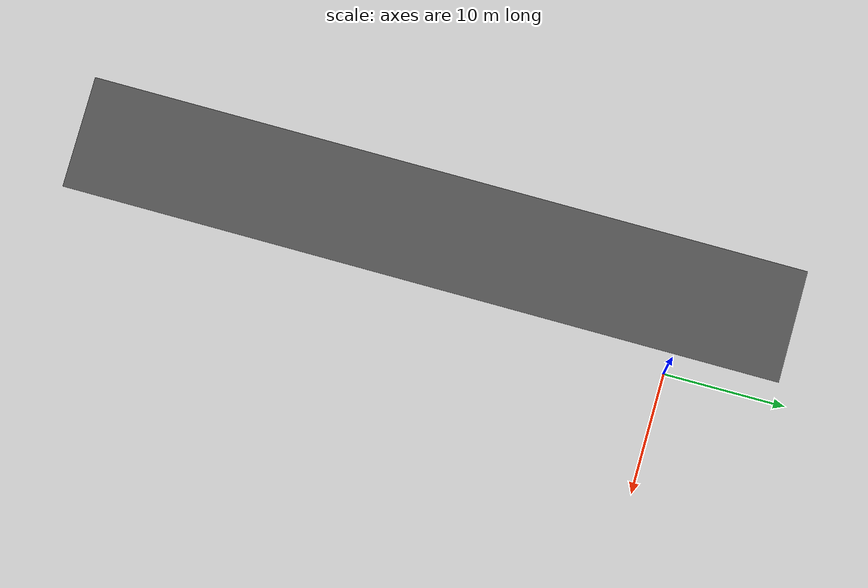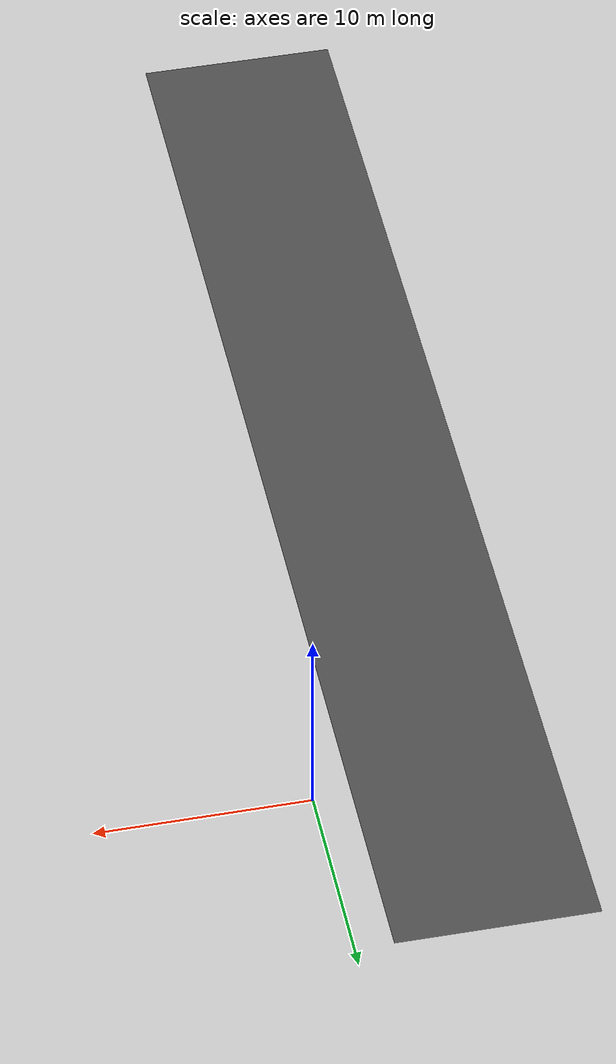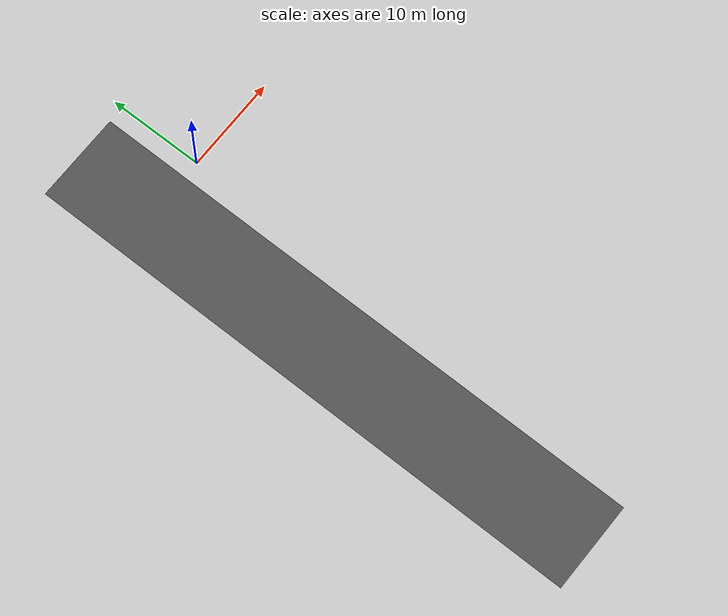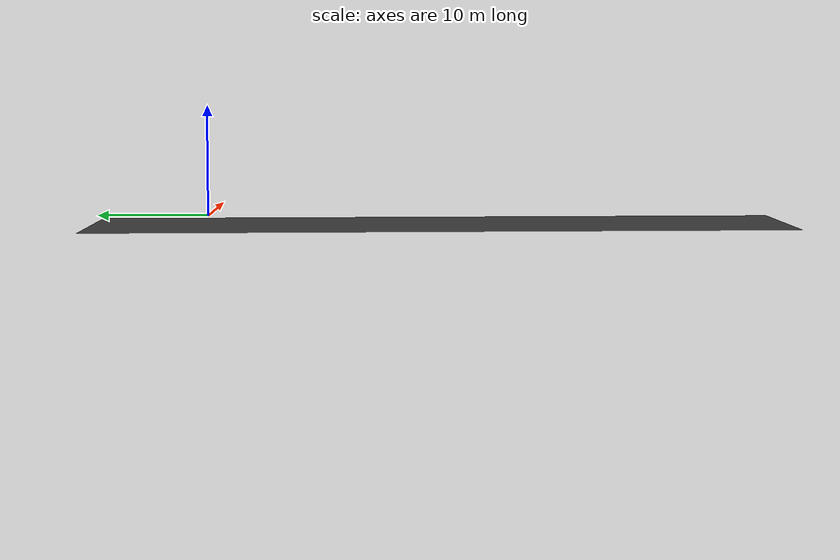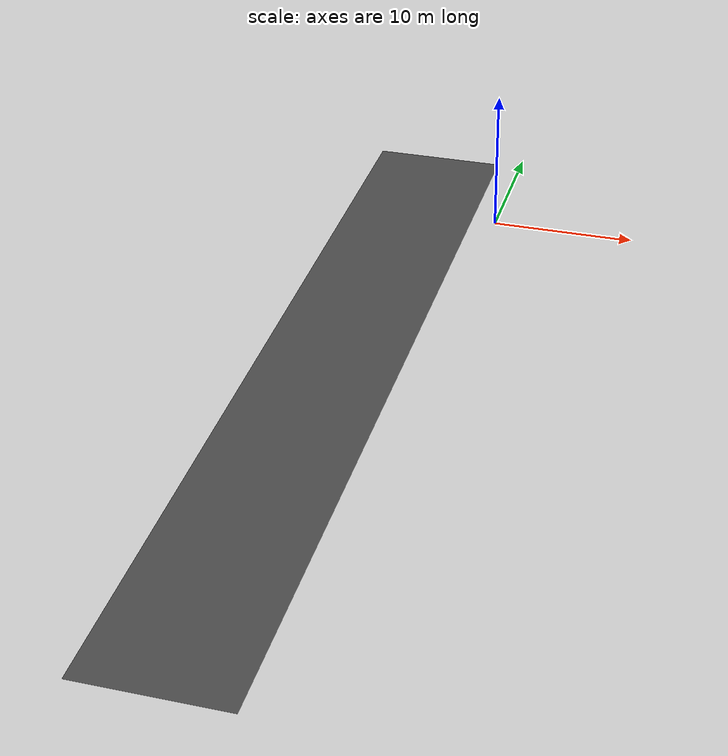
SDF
<?xml version="1.0" ?>
<sdf version="1.6">
  <model name="road2">
    <static>true</static>
      <link name="road2">
        <pose frame=''>0 0 0 0 0 0</pose>
          <collision name="road2">
            <geometry>
              <mesh>
                <uri>model://road2/model.dae</uri>
              </mesh>
            </geometry>
          </collision>
          <visual name="road2">
          <cast_shadows>false</cast_shadows>
            <geometry>
              <mesh>
                <uri>model://road2/model.dae</uri>
              </mesh>
            </geometry>
            <material>
              <script>
                <uri>model://road2/model.dae</uri>
                <name>road2</name>
              </script>
            </material>
          </visual>
      </link>
  </model>
</sdf>
